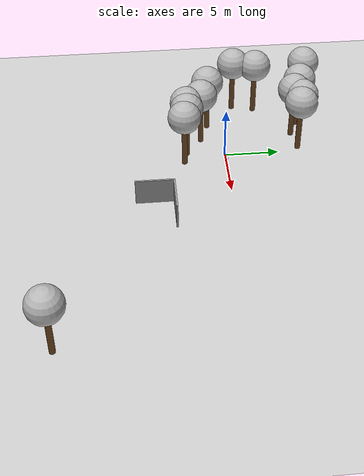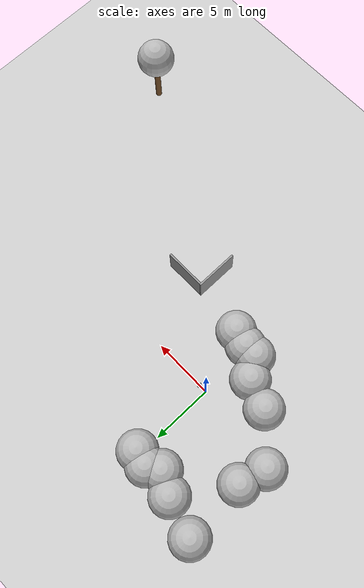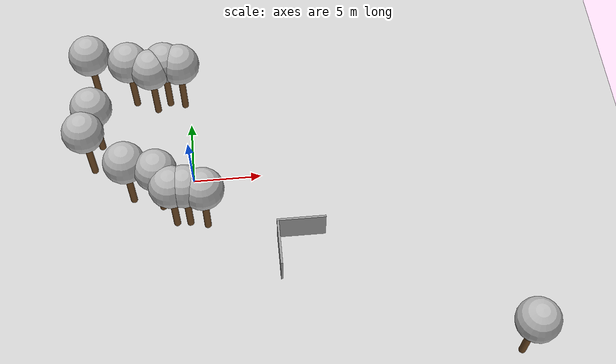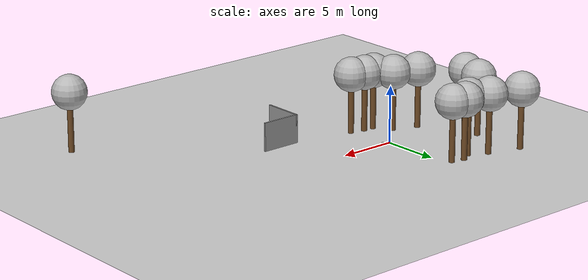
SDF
<sdf version="1.6">
 <world name="default">
  <model name="ground_plane">
   <static>1</static>
   <link name="link">
    <collision name="collision">
     <geometry><plane><normal>0 0 1</normal><size>100 100</size></plane></geometry>
     <surface><friction><ode><mu>100</mu><mu2>50</mu2></ode></friction></surface>
    </collision>
    <visual name="visual">
     <cast_shadows>0</cast_shadows>
     <geometry><plane><normal>0 0 1</normal><size>100 100</size></plane></geometry>
     <material>
      <script><uri>file://media/materials/scripts/gazebo.material</uri><name>Gazebo/Grey</name></script>
     </material>
    </visual>
   </link>
  </model>
  <model name="One_wall">
   <pose>7.58934 -6.85362 0 0 -0 0</pose>
   <link name="Wall_14">
    <collision name="Wall_14_Collision">
     <geometry><box><size>3.5 0.15 2.5</size></box></geometry>
     <pose>0 0 1.25 0 -0 0</pose>
    </collision>
    <visual name="Wall_14_Visual">
     <pose>0 0 1.25 0 -0 0</pose>
     <geometry><box><size>3.5 0.15 2.5</size></box></geometry>
     <material>
      <script><uri>file://media/materials/scripts/gazebo.material</uri><name>Gazebo/Grey</name></script>
      <ambient>1 1 1 1</ambient>
     </material>
    </visual>
    <pose>0 1.675 0 0 -0 0</pose>
   </link>
   <link name="Wall_4">
    <collision name="Wall_4_Collision">
     <geometry><box><size>3.5 0.15 2.5</size></box></geometry>
     <pose>0 0 1.25 0 -0 0</pose>
    </collision>
    <visual name="Wall_4_Visual">
     <pose>0 0 1.25 0 -0 0</pose>
     <geometry><box><size>3.5 0.15 2.5</size></box></geometry>
     <material>
      <script><uri>file://media/materials/scripts/gazebo.material</uri><name>Gazebo/Grey</name></script>
      <ambient>1 1 1 1</ambient>
     </material>
    </visual>
    <pose>-1.675 0 0 0 -0 1.5708</pose>
   </link>
   <static>1</static>
  </model>
  <model name="mybot">
   <link name="chassis">
    <inertial>
     <pose>0 0 0.1 0 -0 0</pose>
     <mass>10</mass>
     <inertia><ixx>0.5</ixx><ixy>0</ixy><ixz>0</ixz><iyy>1</iyy><iyz>0</iyz><izz>0.1</izz></inertia>
    </inertial>
    <collision name="chassis_fixed_joint_lump__collision_collision">
     <geometry><box><size>0.4 0.2 0.1</size></box></geometry>
    </collision>
    <collision name="chassis_fixed_joint_lump__caster_collision_collision_1">
     <pose>-0.15 0 -0.05 0 -0 0</pose>
     <geometry><sphere><radius>0.05</radius></sphere></geometry>
    </collision>
    <visual name="chassis_visual_visual">
     <geometry><box><size>0.4 0.2 0.1</size></box></geometry>
     <material>
      <script><name>Gazebo/Orange</name><uri>file://media/materials/scripts/gazebo.material</uri></script>
     </material>
    </visual>
    <visual name="chassis_fixed_joint_lump__caster_visual_visual_1">
     <pose>-0.15 0 -0.05 0 -0 0</pose>
     <geometry><sphere><radius>0.05</radius></sphere></geometry>
    </visual>
   </link>
   <link name="left_wheel">
    <pose>0.1 0.15 0 0 -0 0</pose>
    <inertial>
     <pose>0 0 0 -0 1.5707 1.5707</pose>
     <mass>5</mass>
     <inertia><ixx>1</ixx><ixy>0</ixy><ixz>0</ixz><iyy>1</iyy><iyz>0</iyz><izz>1</izz></inertia>
    </inertial>
    <collision name="left_wheel_fixed_joint_lump__collision_collision">
     <pose>0 0 0 3.14159 1.57079 -1.57089</pose>
     <geometry><cylinder><length>0.05</length><radius>0.1</radius></cylinder></geometry>
    </collision>
    <visual name="left_wheel_visual_visual">
     <pose>0 0 0 3.14159 1.57079 -1.57089</pose>
     <geometry><cylinder><length>0.05</length><radius>0.1</radius></cylinder></geometry>
    </visual>
   </link>
   <joint name="left_wheel_hinge" type="revolute">
    <child>left_wheel</child>
    <parent>chassis</parent>
    <axis>
     <xyz>0 1 0</xyz>
     <limit><lower>-1e+16</lower><upper>1e+16</upper></limit>
     <dynamics><spring_reference>0</spring_reference><spring_stiffness>0</spring_stiffness></dynamics>
     <use_parent_model_frame>1</use_parent_model_frame>
    </axis>
   </joint>
   <link name="right_wheel">
    <pose>0.1 -0.15 0 0 -0 0</pose>
    <inertial>
     <pose>0 0 0 -0 1.5707 1.5707</pose>
     <mass>5</mass>
     <inertia><ixx>1</ixx><ixy>0</ixy><ixz>0</ixz><iyy>1</iyy><iyz>0</iyz><izz>1</izz></inertia>
    </inertial>
    <collision name="right_wheel_fixed_joint_lump__collision_collision">
     <pose>0 0 0 3.14159 1.57079 -1.57089</pose>
     <geometry><cylinder><length>0.05</length><radius>0.1</radius></cylinder></geometry>
    </collision>
    <visual name="right_wheel_visual_visual">
     <pose>0 0 0 3.14159 1.57079 -1.57089</pose>
     <geometry><cylinder><length>0.05</length><radius>0.1</radius></cylinder></geometry>
    </visual>
   </link>
   <joint name="right_wheel_hinge" type="revolute">
    <child>right_wheel</child>
    <parent>chassis</parent>
    <axis>
     <xyz>0 1 0</xyz>
     <limit><lower>-1e+16</lower><upper>1e+16</upper></limit>
     <dynamics><spring_reference>0</spring_reference><spring_stiffness>0</spring_stiffness></dynamics>
     <use_parent_model_frame>1</use_parent_model_frame>
    </axis>
   </joint>
   <static>0</static>
   <plugin name="differential_drive_controller" filename="libgazebo_ros_diff_drive.so">
    <legacyMode>false</legacyMode>
    <alwaysOn>true</alwaysOn>
    <updateRate>20</updateRate>
    <leftJoint>left_wheel_hinge</leftJoint>
    <rightJoint>right_wheel_hinge</rightJoint>
    <wheelSeparation>0.4</wheelSeparation>
    <wheelDiameter>0.1</wheelDiameter>
    <torque>20</torque>
    <commandTopic>cmd_vel</commandTopic>
    <odometryTopic>odom</odometryTopic>
    <odometryFrame>odom</odometryFrame>
    <robotBaseFrame>chassis</robotBaseFrame>
    <robotNamespace>/</robotNamespace>
   </plugin>
   <pose>0.586849 0.00472 0.1 -1e-06 -1e-06 0.026309</pose>
  </model>
  <model name="tree_simple_1">
   <static>1</static>
   <link name="link">
    <pose>0 0 0.1 0 -0 0</pose>
    <inertial>
     <mass>666</mass>
     <inertia>
      <ixx>0.0861167</ixx>
      <ixy>0</ixy>
      <ixz>0</ixz>
      <iyy>0.0861167</iyy>
      <iyz>0</iyz>
      <izz>0.0861167</izz>
     </inertia>
    </inertial>
    <collision name="collision_trunk">
     <pose>0 0 2 0 -0 0</pose>
     <geometry><cylinder><radius>0.25</radius><length>4</length></cylinder></geometry>
     <surface>
      <contact>
       <poissons_ratio>0.347</poissons_ratio>
       <elastic_modulus>8.8e+09</elastic_modulus>
       <ode><kp>100000</kp><kd>100</kd><max_vel>100</max_vel><min_depth>0.001</min_depth></ode>
      </contact>
      <friction>
       <torsional>
        <coefficient>1</coefficient>
        <use_patch_radius>0</use_patch_radius>
        <surface_radius>0.01</surface_radius>
       </torsional>
      </friction>
     </surface>
    </collision>
    <collision name="collision_treetop">
     <pose>0 0 5.2 0 -0 0</pose>
     <geometry><sphere><radius>1.5</radius></sphere></geometry>
     <surface>
      <contact>
       <poissons_ratio>0.347</poissons_ratio>
       <elastic_modulus>8.8e+09</elastic_modulus>
       <ode><kp>100000</kp><kd>100</kd><max_vel>100</max_vel><min_depth>0.001</min_depth></ode>
      </contact>
      <friction>
       <torsional>
        <coefficient>1</coefficient>
        <use_patch_radius>0</use_patch_radius>
        <surface_radius>0.01</surface_radius>
       </torsional>
      </friction>
     </surface>
    </collision>
    <visual name="trunk">
     <pose>0 0 2 0 -0 0</pose>
     <geometry><cylinder><radius>0.25</radius><length>4</length></cylinder></geometry>
     <material>
      <script>
       <uri>model://tree_simple/scripts</uri>
       <uri>model://tree_simple/materials/textures</uri>
       <name>TreeSimple/Trunk</name>
      </script>
     </material>
    </visual>
    <visual name="treetop">
     <pose>0 0 5.2 0 -0 0</pose>
     <geometry><sphere><radius>1.5</radius></sphere></geometry>
     <material>
      <script>
       <uri>model://tree_simple/scripts</uri>
       <uri>model://tree_simple/materials/textures</uri>
       <name>TreeSimple/Treetop</name>
      </script>
     </material>
    </visual>
   </link>
   <pose>-7.02523 8.30668 0 0 -0 0</pose>
  </model>
  <model name="tree_simple_2">
   <static>1</static>
   <link name="link">
    <pose>0 0 0.1 0 -0 0</pose>
    <inertial>
     <mass>666</mass>
     <inertia>
      <ixx>0.0861167</ixx>
      <ixy>0</ixy>
      <ixz>0</ixz>
      <iyy>0.0861167</iyy>
      <iyz>0</iyz>
      <izz>0.0861167</izz>
     </inertia>
    </inertial>
    <collision name="collision_trunk">
     <pose>0 0 2 0 -0 0</pose>
     <geometry><cylinder><radius>0.25</radius><length>4</length></cylinder></geometry>
     <surface>
      <contact>
       <poissons_ratio>0.347</poissons_ratio>
       <elastic_modulus>8.8e+09</elastic_modulus>
       <ode><kp>100000</kp><kd>100</kd><max_vel>100</max_vel><min_depth>0.001</min_depth></ode>
      </contact>
      <friction>
       <torsional>
        <coefficient>1</coefficient>
        <use_patch_radius>0</use_patch_radius>
        <surface_radius>0.01</surface_radius>
       </torsional>
      </friction>
     </surface>
    </collision>
    <collision name="collision_treetop">
     <pose>0 0 5.2 0 -0 0</pose>
     <geometry><sphere><radius>1.5</radius></sphere></geometry>
     <surface>
      <contact>
       <poissons_ratio>0.347</poissons_ratio>
       <elastic_modulus>8.8e+09</elastic_modulus>
       <ode><kp>100000</kp><kd>100</kd><max_vel>100</max_vel><min_depth>0.001</min_depth></ode>
      </contact>
      <friction>
       <torsional>
        <coefficient>1</coefficient>
        <use_patch_radius>0</use_patch_radius>
        <surface_radius>0.01</surface_radius>
       </torsional>
      </friction>
     </surface>
    </collision>
    <visual name="trunk">
     <pose>0 0 2 0 -0 0</pose>
     <geometry><cylinder><radius>0.25</radius><length>4</length></cylinder></geometry>
     <material>
      <script>
       <uri>model://tree_simple/scripts</uri>
       <uri>model://tree_simple/materials/textures</uri>
       <name>TreeSimple/Trunk</name>
      </script>
     </material>
    </visual>
    <visual name="treetop">
     <pose>0 0 5.2 0 -0 0</pose>
     <geometry><sphere><radius>1.5</radius></sphere></geometry>
     <material>
      <script>
       <uri>model://tree_simple/scripts</uri>
       <uri>model://tree_simple/materials/textures</uri>
       <name>TreeSimple/Treetop</name>
      </script>
     </material>
    </visual>
   </link>
   <pose>21.6904 -15.3477 0 0 -0 0</pose>
  </model>
  <model name="tree_simple_3">
   <static>1</static>
   <link name="link">
    <pose>0 0 0.1 0 -0 0</pose>
    <inertial>
     <mass>666</mass>
     <inertia>
      <ixx>0.0861167</ixx>
      <ixy>0</ixy>
      <ixz>0</ixz>
      <iyy>0.0861167</iyy>
      <iyz>0</iyz>
      <izz>0.0861167</izz>
     </inertia>
    </inertial>
    <collision name="collision_trunk">
     <pose>0 0 2 0 -0 0</pose>
     <geometry><cylinder><radius>0.25</radius><length>4</length></cylinder></geometry>
     <surface>
      <contact>
       <poissons_ratio>0.347</poissons_ratio>
       <elastic_modulus>8.8e+09</elastic_modulus>
       <ode><kp>100000</kp><kd>100</kd><max_vel>100</max_vel><min_depth>0.001</min_depth></ode>
      </contact>
      <friction>
       <torsional>
        <coefficient>1</coefficient>
        <use_patch_radius>0</use_patch_radius>
        <surface_radius>0.01</surface_radius>
       </torsional>
      </friction>
     </surface>
    </collision>
    <collision name="collision_treetop">
     <pose>0 0 5.2 0 -0 0</pose>
     <geometry><sphere><radius>1.5</radius></sphere></geometry>
     <surface>
      <contact>
       <poissons_ratio>0.347</poissons_ratio>
       <elastic_modulus>8.8e+09</elastic_modulus>
       <ode><kp>100000</kp><kd>100</kd><max_vel>100</max_vel><min_depth>0.001</min_depth></ode>
      </contact>
      <friction>
       <torsional>
        <coefficient>1</coefficient>
        <use_patch_radius>0</use_patch_radius>
        <surface_radius>0.01</surface_radius>
       </torsional>
      </friction>
     </surface>
    </collision>
    <visual name="trunk">
     <pose>0 0 2 0 -0 0</pose>
     <geometry><cylinder><radius>0.25</radius><length>4</length></cylinder></geometry>
     <material>
      <script>
       <uri>model://tree_simple/scripts</uri>
       <uri>model://tree_simple/materials/textures</uri>
       <name>TreeSimple/Trunk</name>
      </script>
     </material>
    </visual>
    <visual name="treetop">
     <pose>0 0 5.2 0 -0 0</pose>
     <geometry><sphere><radius>1.5</radius></sphere></geometry>
     <material>
      <script>
       <uri>model://tree_simple/scripts</uri>
       <uri>model://tree_simple/materials/textures</uri>
       <name>TreeSimple/Treetop</name>
      </script>
     </material>
    </visual>
   </link>
   <pose>-4.43969 -1.28678 0 0 -0 0</pose>
  </model>
  <model name="tree_simple_4">
   <static>1</static>
   <link name="link">
    <pose>0 0 0.1 0 -0 0</pose>
    <inertial>
     <mass>666</mass>
     <inertia>
      <ixx>0.0861167</ixx>
      <ixy>0</ixy>
      <ixz>0</ixz>
      <iyy>0.0861167</iyy>
      <iyz>0</iyz>
      <izz>0.0861167</izz>
     </inertia>
    </inertial>
    <collision name="collision_trunk">
     <pose>0 0 2 0 -0 0</pose>
     <geometry><cylinder><radius>0.25</radius><length>4</length></cylinder></geometry>
     <surface>
      <contact>
       <poissons_ratio>0.347</poissons_ratio>
       <elastic_modulus>8.8e+09</elastic_modulus>
       <ode><kp>100000</kp><kd>100</kd><max_vel>100</max_vel><min_depth>0.001</min_depth></ode>
      </contact>
      <friction>
       <torsional>
        <coefficient>1</coefficient>
        <use_patch_radius>0</use_patch_radius>
        <surface_radius>0.01</surface_radius>
       </torsional>
      </friction>
     </surface>
    </collision>
    <collision name="collision_treetop">
     <pose>0 0 5.2 0 -0 0</pose>
     <geometry><sphere><radius>1.5</radius></sphere></geometry>
     <surface>
      <contact>
       <poissons_ratio>0.347</poissons_ratio>
       <elastic_modulus>8.8e+09</elastic_modulus>
       <ode><kp>100000</kp><kd>100</kd><max_vel>100</max_vel><min_depth>0.001</min_depth></ode>
      </contact>
      <friction>
       <torsional>
        <coefficient>1</coefficient>
        <use_patch_radius>0</use_patch_radius>
        <surface_radius>0.01</surface_radius>
       </torsional>
      </friction>
     </surface>
    </collision>
    <visual name="trunk">
     <pose>0 0 2 0 -0 0</pose>
     <geometry><cylinder><radius>0.25</radius><length>4</length></cylinder></geometry>
     <material>
      <script>
       <uri>model://tree_simple/scripts</uri>
       <uri>model://tree_simple/materials/textures</uri>
       <name>TreeSimple/Trunk</name>
      </script>
     </material>
    </visual>
    <visual name="treetop">
     <pose>0 0 5.2 0 -0 0</pose>
     <geometry><sphere><radius>1.5</radius></sphere></geometry>
     <material>
      <script>
       <uri>model://tree_simple/scripts</uri>
       <uri>model://tree_simple/materials/textures</uri>
       <name>TreeSimple/Treetop</name>
      </script>
     </material>
    </visual>
   </link>
   <pose>-2.2902 -2.08536 0 0 -0 0</pose>
  </model>
  <model name="tree_simple_5">
   <static>1</static>
   <link name="link">
    <pose>0 0 0.1 0 -0 0</pose>
    <inertial>
     <mass>666</mass>
     <inertia>
      <ixx>0.0861167</ixx>
      <ixy>0</ixy>
      <ixz>0</ixz>
      <iyy>0.0861167</iyy>
      <iyz>0</iyz>
      <izz>0.0861167</izz>
     </inertia>
    </inertial>
    <collision name="collision_trunk">
     <pose>0 0 2 0 -0 0</pose>
     <geometry><cylinder><radius>0.25</radius><length>4</length></cylinder></geometry>
     <surface>
      <contact>
       <poissons_ratio>0.347</poissons_ratio>
       <elastic_modulus>8.8e+09</elastic_modulus>
       <ode><kp>100000</kp><kd>100</kd><max_vel>100</max_vel><min_depth>0.001</min_depth></ode>
      </contact>
      <friction>
       <torsional>
        <coefficient>1</coefficient>
        <use_patch_radius>0</use_patch_radius>
        <surface_radius>0.01</surface_radius>
       </torsional>
      </friction>
     </surface>
    </collision>
    <collision name="collision_treetop">
     <pose>0 0 5.2 0 -0 0</pose>
     <geometry><sphere><radius>1.5</radius></sphere></geometry>
     <surface>
      <contact>
       <poissons_ratio>0.347</poissons_ratio>
       <elastic_modulus>8.8e+09</elastic_modulus>
       <ode><kp>100000</kp><kd>100</kd><max_vel>100</max_vel><min_depth>0.001</min_depth></ode>
      </contact>
      <friction>
       <torsional>
        <coefficient>1</coefficient>
        <use_patch_radius>0</use_patch_radius>
        <surface_radius>0.01</surface_radius>
       </torsional>
      </friction>
     </surface>
    </collision>
    <visual name="trunk">
     <pose>0 0 2 0 -0 0</pose>
     <geometry><cylinder><radius>0.25</radius><length>4</length></cylinder></geometry>
     <material>
      <script>
       <uri>model://tree_simple/scripts</uri>
       <uri>model://tree_simple/materials/textures</uri>
       <name>TreeSimple/Trunk</name>
      </script>
     </material>
    </visual>
    <visual name="treetop">
     <pose>0 0 5.2 0 -0 0</pose>
     <geometry><sphere><radius>1.5</radius></sphere></geometry>
     <material>
      <script>
       <uri>model://tree_simple/scripts</uri>
       <uri>model://tree_simple/materials/textures</uri>
       <name>TreeSimple/Treetop</name>
      </script>
     </material>
    </visual>
   </link>
   <pose>-1.31138 -3.51415 0 0 -0 0</pose>
  </model>
  <model name="tree_simple_6">
   <static>1</static>
   <link name="link">
    <pose>0 0 0.1 0 -0 0</pose>
    <inertial>
     <mass>666</mass>
     <inertia>
      <ixx>0.0861167</ixx>
      <ixy>0</ixy>
      <ixz>0</ixz>
      <iyy>0.0861167</iyy>
      <iyz>0</iyz>
      <izz>0.0861167</izz>
     </inertia>
    </inertial>
    <collision name="collision_trunk">
     <pose>0 0 2 0 -0 0</pose>
     <geometry><cylinder><radius>0.25</radius><length>4</length></cylinder></geometry>
     <surface>
      <contact>
       <poissons_ratio>0.347</poissons_ratio>
       <elastic_modulus>8.8e+09</elastic_modulus>
       <ode><kp>100000</kp><kd>100</kd><max_vel>100</max_vel><min_depth>0.001</min_depth></ode>
      </contact>
      <friction>
       <torsional>
        <coefficient>1</coefficient>
        <use_patch_radius>0</use_patch_radius>
        <surface_radius>0.01</surface_radius>
       </torsional>
      </friction>
     </surface>
    </collision>
    <collision name="collision_treetop">
     <pose>0 0 5.2 0 -0 0</pose>
     <geometry><sphere><radius>1.5</radius></sphere></geometry>
     <surface>
      <contact>
       <poissons_ratio>0.347</poissons_ratio>
       <elastic_modulus>8.8e+09</elastic_modulus>
       <ode><kp>100000</kp><kd>100</kd><max_vel>100</max_vel><min_depth>0.001</min_depth></ode>
      </contact>
      <friction>
       <torsional>
        <coefficient>1</coefficient>
        <use_patch_radius>0</use_patch_radius>
        <surface_radius>0.01</surface_radius>
       </torsional>
      </friction>
     </surface>
    </collision>
    <visual name="trunk">
     <pose>0 0 2 0 -0 0</pose>
     <geometry><cylinder><radius>0.25</radius><length>4</length></cylinder></geometry>
     <material>
      <script>
       <uri>model://tree_simple/scripts</uri>
       <uri>model://tree_simple/materials/textures</uri>
       <name>TreeSimple/Trunk</name>
      </script>
     </material>
    </visual>
    <visual name="treetop">
     <pose>0 0 5.2 0 -0 0</pose>
     <geometry><sphere><radius>1.5</radius></sphere></geometry>
     <material>
      <script>
       <uri>model://tree_simple/scripts</uri>
       <uri>model://tree_simple/materials/textures</uri>
       <name>TreeSimple/Treetop</name>
      </script>
     </material>
    </visual>
   </link>
   <pose>-0.347688 -3.5559 0 0 -0 0</pose>
  </model>
  <model name="tree_simple_7">
   <static>1</static>
   <link name="link">
    <pose>0 0 0.1 0 -0 0</pose>
    <inertial>
     <mass>666</mass>
     <inertia>
      <ixx>0.0861167</ixx>
      <ixy>0</ixy>
      <ixz>0</ixz>
      <iyy>0.0861167</iyy>
      <iyz>0</iyz>
      <izz>0.0861167</izz>
     </inertia>
    </inertial>
    <collision name="collision_trunk">
     <pose>0 0 2 0 -0 0</pose>
     <geometry><cylinder><radius>0.25</radius><length>4</length></cylinder></geometry>
     <surface>
      <contact>
       <poissons_ratio>0.347</poissons_ratio>
       <elastic_modulus>8.8e+09</elastic_modulus>
       <ode><kp>100000</kp><kd>100</kd><max_vel>100</max_vel><min_depth>0.001</min_depth></ode>
      </contact>
      <friction>
       <torsional>
        <coefficient>1</coefficient>
        <use_patch_radius>0</use_patch_radius>
        <surface_radius>0.01</surface_radius>
       </torsional>
      </friction>
     </surface>
    </collision>
    <collision name="collision_treetop">
     <pose>0 0 5.2 0 -0 0</pose>
     <geometry><sphere><radius>1.5</radius></sphere></geometry>
     <surface>
      <contact>
       <poissons_ratio>0.347</poissons_ratio>
       <elastic_modulus>8.8e+09</elastic_modulus>
       <ode><kp>100000</kp><kd>100</kd><max_vel>100</max_vel><min_depth>0.001</min_depth></ode>
      </contact>
      <friction>
       <torsional>
        <coefficient>1</coefficient>
        <use_patch_radius>0</use_patch_radius>
        <surface_radius>0.01</surface_radius>
       </torsional>
      </friction>
     </surface>
    </collision>
    <visual name="trunk">
     <pose>0 0 2 0 -0 0</pose>
     <geometry><cylinder><radius>0.25</radius><length>4</length></cylinder></geometry>
     <material>
      <script>
       <uri>model://tree_simple/scripts</uri>
       <uri>model://tree_simple/materials/textures</uri>
       <name>TreeSimple/Trunk</name>
      </script>
     </material>
    </visual>
    <visual name="treetop">
     <pose>0 0 5.2 0 -0 0</pose>
     <geometry><sphere><radius>1.5</radius></sphere></geometry>
     <material>
      <script>
       <uri>model://tree_simple/scripts</uri>
       <uri>model://tree_simple/materials/textures</uri>
       <name>TreeSimple/Treetop</name>
      </script>
     </material>
    </visual>
   </link>
   <pose>0.90234 -3.86772 0 0 -0 0</pose>
  </model>
  <model name="tree_simple_8">
   <static>1</static>
   <link name="link">
    <pose>0 0 0.1 0 -0 0</pose>
    <inertial>
     <mass>666</mass>
     <inertia>
      <ixx>0.0861167</ixx>
      <ixy>0</ixy>
      <ixz>0</ixz>
      <iyy>0.0861167</iyy>
      <iyz>0</iyz>
      <izz>0.0861167</izz>
     </inertia>
    </inertial>
    <collision name="collision_trunk">
     <pose>0 0 2 0 -0 0</pose>
     <geometry><cylinder><radius>0.25</radius><length>4</length></cylinder></geometry>
     <surface>
      <contact>
       <poissons_ratio>0.347</poissons_ratio>
       <elastic_modulus>8.8e+09</elastic_modulus>
       <ode><kp>100000</kp><kd>100</kd><max_vel>100</max_vel><min_depth>0.001</min_depth></ode>
      </contact>
      <friction>
       <torsional>
        <coefficient>1</coefficient>
        <use_patch_radius>0</use_patch_radius>
        <surface_radius>0.01</surface_radius>
       </torsional>
      </friction>
     </surface>
    </collision>
    <collision name="collision_treetop">
     <pose>0 0 5.2 0 -0 0</pose>
     <geometry><sphere><radius>1.5</radius></sphere></geometry>
     <surface>
      <contact>
       <poissons_ratio>0.347</poissons_ratio>
       <elastic_modulus>8.8e+09</elastic_modulus>
       <ode><kp>100000</kp><kd>100</kd><max_vel>100</max_vel><min_depth>0.001</min_depth></ode>
      </contact>
      <friction>
       <torsional>
        <coefficient>1</coefficient>
        <use_patch_radius>0</use_patch_radius>
        <surface_radius>0.01</surface_radius>
       </torsional>
      </friction>
     </surface>
    </collision>
    <visual name="trunk">
     <pose>0 0 2 0 -0 0</pose>
     <geometry><cylinder><radius>0.25</radius><length>4</length></cylinder></geometry>
     <material>
      <script>
       <uri>model://tree_simple/scripts</uri>
       <uri>model://tree_simple/materials/textures</uri>
       <name>TreeSimple/Trunk</name>
      </script>
     </material>
    </visual>
    <visual name="treetop">
     <pose>0 0 5.2 0 -0 0</pose>
     <geometry><sphere><radius>1.5</radius></sphere></geometry>
     <material>
      <script>
       <uri>model://tree_simple/scripts</uri>
       <uri>model://tree_simple/materials/textures</uri>
       <name>TreeSimple/Treetop</name>
      </script>
     </material>
    </visual>
   </link>
   <pose>-4.14511 7.43527 0 0 -0 0</pose>
  </model>
  <model name="tree_simple_9">
   <static>1</static>
   <link name="link">
    <pose>0 0 0.1 0 -0 0</pose>
    <inertial>
     <mass>666</mass>
     <inertia>
      <ixx>0.0861167</ixx>
      <ixy>0</ixy>
      <ixz>0</ixz>
      <iyy>0.0861167</iyy>
      <iyz>0</iyz>
      <izz>0.0861167</izz>
     </inertia>
    </inertial>
    <collision name="collision_trunk">
     <pose>0 0 2 0 -0 0</pose>
     <geometry><cylinder><radius>0.25</radius><length>4</length></cylinder></geometry>
     <surface>
      <contact>
       <poissons_ratio>0.347</poissons_ratio>
       <elastic_modulus>8.8e+09</elastic_modulus>
       <ode><kp>100000</kp><kd>100</kd><max_vel>100</max_vel><min_depth>0.001</min_depth></ode>
      </contact>
      <friction>
       <torsional>
        <coefficient>1</coefficient>
        <use_patch_radius>0</use_patch_radius>
        <surface_radius>0.01</surface_radius>
       </torsional>
      </friction>
     </surface>
    </collision>
    <collision name="collision_treetop">
     <pose>0 0 5.2 0 -0 0</pose>
     <geometry><sphere><radius>1.5</radius></sphere></geometry>
     <surface>
      <contact>
       <poissons_ratio>0.347</poissons_ratio>
       <elastic_modulus>8.8e+09</elastic_modulus>
       <ode><kp>100000</kp><kd>100</kd><max_vel>100</max_vel><min_depth>0.001</min_depth></ode>
      </contact>
      <friction>
       <torsional>
        <coefficient>1</coefficient>
        <use_patch_radius>0</use_patch_radius>
        <surface_radius>0.01</surface_radius>
       </torsional>
      </friction>
     </surface>
    </collision>
    <visual name="trunk">
     <pose>0 0 2 0 -0 0</pose>
     <geometry><cylinder><radius>0.25</radius><length>4</length></cylinder></geometry>
     <material>
      <script>
       <uri>model://tree_simple/scripts</uri>
       <uri>model://tree_simple/materials/textures</uri>
       <name>TreeSimple/Trunk</name>
      </script>
     </material>
    </visual>
    <visual name="treetop">
     <pose>0 0 5.2 0 -0 0</pose>
     <geometry><sphere><radius>1.5</radius></sphere></geometry>
     <material>
      <script>
       <uri>model://tree_simple/scripts</uri>
       <uri>model://tree_simple/materials/textures</uri>
       <name>TreeSimple/Treetop</name>
      </script>
     </material>
    </visual>
   </link>
   <pose>-2.52073 6.63922 0 0 -0 0</pose>
  </model>
  <model name="tree_simple_10">
   <static>1</static>
   <link name="link">
    <pose>0 0 0.1 0 -0 0</pose>
    <inertial>
     <mass>666</mass>
     <inertia>
      <ixx>0.0861167</ixx>
      <ixy>0</ixy>
      <ixz>0</ixz>
      <iyy>0.0861167</iyy>
      <iyz>0</iyz>
      <izz>0.0861167</izz>
     </inertia>
    </inertial>
    <collision name="collision_trunk">
     <pose>0 0 2 0 -0 0</pose>
     <geometry><cylinder><radius>0.25</radius><length>4</length></cylinder></geometry>
     <surface>
      <contact>
       <poissons_ratio>0.347</poissons_ratio>
       <elastic_modulus>8.8e+09</elastic_modulus>
       <ode><kp>100000</kp><kd>100</kd><max_vel>100</max_vel><min_depth>0.001</min_depth></ode>
      </contact>
      <friction>
       <torsional>
        <coefficient>1</coefficient>
        <use_patch_radius>0</use_patch_radius>
        <surface_radius>0.01</surface_radius>
       </torsional>
      </friction>
     </surface>
    </collision>
    <collision name="collision_treetop">
     <pose>0 0 5.2 0 -0 0</pose>
     <geometry><sphere><radius>1.5</radius></sphere></geometry>
     <surface>
      <contact>
       <poissons_ratio>0.347</poissons_ratio>
       <elastic_modulus>8.8e+09</elastic_modulus>
       <ode><kp>100000</kp><kd>100</kd><max_vel>100</max_vel><min_depth>0.001</min_depth></ode>
      </contact>
      <friction>
       <torsional>
        <coefficient>1</coefficient>
        <use_patch_radius>0</use_patch_radius>
        <surface_radius>0.01</surface_radius>
       </torsional>
      </friction>
     </surface>
    </collision>
    <visual name="trunk">
     <pose>0 0 2 0 -0 0</pose>
     <geometry><cylinder><radius>0.25</radius><length>4</length></cylinder></geometry>
     <material>
      <script>
       <uri>model://tree_simple/scripts</uri>
       <uri>model://tree_simple/materials/textures</uri>
       <name>TreeSimple/Trunk</name>
      </script>
     </material>
    </visual>
    <visual name="treetop">
     <pose>0 0 5.2 0 -0 0</pose>
     <geometry><sphere><radius>1.5</radius></sphere></geometry>
     <material>
      <script>
       <uri>model://tree_simple/scripts</uri>
       <uri>model://tree_simple/materials/textures</uri>
       <name>TreeSimple/Treetop</name>
      </script>
     </material>
    </visual>
   </link>
   <pose>-1.55154 7.19902 0 0 -0 0</pose>
  </model>
  <model name="tree_simple_12">
   <static>1</static>
   <link name="link">
    <pose>0 0 0.1 0 -0 0</pose>
    <inertial>
     <mass>666</mass>
     <inertia>
      <ixx>0.0861167</ixx>
      <ixy>0</ixy>
      <ixz>0</ixz>
      <iyy>0.0861167</iyy>
      <iyz>0</iyz>
      <izz>0.0861167</izz>
     </inertia>
    </inertial>
    <collision name="collision_trunk">
     <pose>0 0 2 0 -0 0</pose>
     <geometry><cylinder><radius>0.25</radius><length>4</length></cylinder></geometry>
     <surface>
      <contact>
       <poissons_ratio>0.347</poissons_ratio>
       <elastic_modulus>8.8e+09</elastic_modulus>
       <ode><kp>100000</kp><kd>100</kd><max_vel>100</max_vel><min_depth>0.001</min_depth></ode>
      </contact>
      <friction>
       <torsional>
        <coefficient>1</coefficient>
        <use_patch_radius>0</use_patch_radius>
        <surface_radius>0.01</surface_radius>
       </torsional>
      </friction>
     </surface>
    </collision>
    <collision name="collision_treetop">
     <pose>0 0 5.2 0 -0 0</pose>
     <geometry><sphere><radius>1.5</radius></sphere></geometry>
     <surface>
      <contact>
       <poissons_ratio>0.347</poissons_ratio>
       <elastic_modulus>8.8e+09</elastic_modulus>
       <ode><kp>100000</kp><kd>100</kd><max_vel>100</max_vel><min_depth>0.001</min_depth></ode>
      </contact>
      <friction>
       <torsional>
        <coefficient>1</coefficient>
        <use_patch_radius>0</use_patch_radius>
        <surface_radius>0.01</surface_radius>
       </torsional>
      </friction>
     </surface>
    </collision>
    <visual name="trunk">
     <pose>0 0 2 0 -0 0</pose>
     <geometry><cylinder><radius>0.25</radius><length>4</length></cylinder></geometry>
     <material>
      <script>
       <uri>model://tree_simple/scripts</uri>
       <uri>model://tree_simple/materials/textures</uri>
       <name>TreeSimple/Trunk</name>
      </script>
     </material>
    </visual>
    <visual name="treetop">
     <pose>0 0 5.2 0 -0 0</pose>
     <geometry><sphere><radius>1.5</radius></sphere></geometry>
     <material>
      <script>
       <uri>model://tree_simple/scripts</uri>
       <uri>model://tree_simple/materials/textures</uri>
       <name>TreeSimple/Treetop</name>
      </script>
     </material>
    </visual>
   </link>
   <pose>-7.35635 1.49526 0 0 -0 0</pose>
  </model>
  <model name="tree_simple_13">
   <static>1</static>
   <link name="link">
    <pose>0 0 0.1 0 -0 0</pose>
    <inertial>
     <mass>666</mass>
     <inertia>
      <ixx>0.0861167</ixx>
      <ixy>0</ixy>
      <ixz>0</ixz>
      <iyy>0.0861167</iyy>
      <iyz>0</iyz>
      <izz>0.0861167</izz>
     </inertia>
    </inertial>
    <collision name="collision_trunk">
     <pose>0 0 2 0 -0 0</pose>
     <geometry><cylinder><radius>0.25</radius><length>4</length></cylinder></geometry>
     <surface>
      <contact>
       <poissons_ratio>0.347</poissons_ratio>
       <elastic_modulus>8.8e+09</elastic_modulus>
       <ode><kp>100000</kp><kd>100</kd><max_vel>100</max_vel><min_depth>0.001</min_depth></ode>
      </contact>
      <friction>
       <torsional>
        <coefficient>1</coefficient>
        <use_patch_radius>0</use_patch_radius>
        <surface_radius>0.01</surface_radius>
       </torsional>
      </friction>
     </surface>
    </collision>
    <collision name="collision_treetop">
     <pose>0 0 5.2 0 -0 0</pose>
     <geometry><sphere><radius>1.5</radius></sphere></geometry>
     <surface>
      <contact>
       <poissons_ratio>0.347</poissons_ratio>
       <elastic_modulus>8.8e+09</elastic_modulus>
       <ode><kp>100000</kp><kd>100</kd><max_vel>100</max_vel><min_depth>0.001</min_depth></ode>
      </contact>
      <friction>
       <torsional>
        <coefficient>1</coefficient>
        <use_patch_radius>0</use_patch_radius>
        <surface_radius>0.01</surface_radius>
       </torsional>
      </friction>
     </surface>
    </collision>
    <visual name="trunk">
     <pose>0 0 2 0 -0 0</pose>
     <geometry><cylinder><radius>0.25</radius><length>4</length></cylinder></geometry>
     <material>
      <script>
       <uri>model://tree_simple/scripts</uri>
       <uri>model://tree_simple/materials/textures</uri>
       <name>TreeSimple/Trunk</name>
      </script>
     </material>
    </visual>
    <visual name="treetop">
     <pose>0 0 5.2 0 -0 0</pose>
     <geometry><sphere><radius>1.5</radius></sphere></geometry>
     <material>
      <script>
       <uri>model://tree_simple/scripts</uri>
       <uri>model://tree_simple/materials/textures</uri>
       <name>TreeSimple/Treetop</name>
      </script>
     </material>
    </visual>
   </link>
   <pose>-0.409099 6.9287 0 0 -0 0</pose>
  </model>
  <model name="tree_simple_14">
   <static>1</static>
   <link name="link">
    <pose>0 0 0.1 0 -0 0</pose>
    <inertial>
     <mass>666</mass>
     <inertia>
      <ixx>0.0861167</ixx>
      <ixy>0</ixy>
      <ixz>0</ixz>
      <iyy>0.0861167</iyy>
      <iyz>0</iyz>
      <izz>0.0861167</izz>
     </inertia>
    </inertial>
    <collision name="collision_trunk">
     <pose>0 0 2 0 -0 0</pose>
     <geometry><cylinder><radius>0.25</radius><length>4</length></cylinder></geometry>
     <surface>
      <contact>
       <poissons_ratio>0.347</poissons_ratio>
       <elastic_modulus>8.8e+09</elastic_modulus>
       <ode><kp>100000</kp><kd>100</kd><max_vel>100</max_vel><min_depth>0.001</min_depth></ode>
      </contact>
      <friction>
       <torsional>
        <coefficient>1</coefficient>
        <use_patch_radius>0</use_patch_radius>
        <surface_radius>0.01</surface_radius>
       </torsional>
      </friction>
     </surface>
    </collision>
    <collision name="collision_treetop">
     <pose>0 0 5.2 0 -0 0</pose>
     <geometry><sphere><radius>1.5</radius></sphere></geometry>
     <surface>
      <contact>
       <poissons_ratio>0.347</poissons_ratio>
       <elastic_modulus>8.8e+09</elastic_modulus>
       <ode><kp>100000</kp><kd>100</kd><max_vel>100</max_vel><min_depth>0.001</min_depth></ode>
      </contact>
      <friction>
       <torsional>
        <coefficient>1</coefficient>
        <use_patch_radius>0</use_patch_radius>
        <surface_radius>0.01</surface_radius>
       </torsional>
      </friction>
     </surface>
    </collision>
    <visual name="trunk">
     <pose>0 0 2 0 -0 0</pose>
     <geometry><cylinder><radius>0.25</radius><length>4</length></cylinder></geometry>
     <material>
      <script>
       <uri>model://tree_simple/scripts</uri>
       <uri>model://tree_simple/materials/textures</uri>
       <name>TreeSimple/Trunk</name>
      </script>
     </material>
    </visual>
    <visual name="treetop">
     <pose>0 0 5.2 0 -0 0</pose>
     <geometry><sphere><radius>1.5</radius></sphere></geometry>
     <material>
      <script>
       <uri>model://tree_simple/scripts</uri>
       <uri>model://tree_simple/materials/textures</uri>
       <name>TreeSimple/Treetop</name>
      </script>
     </material>
    </visual>
   </link>
   <pose>-6.80704 3.56012 0 0 -0 0</pose>
  </model>
 </world>
</sdf>
